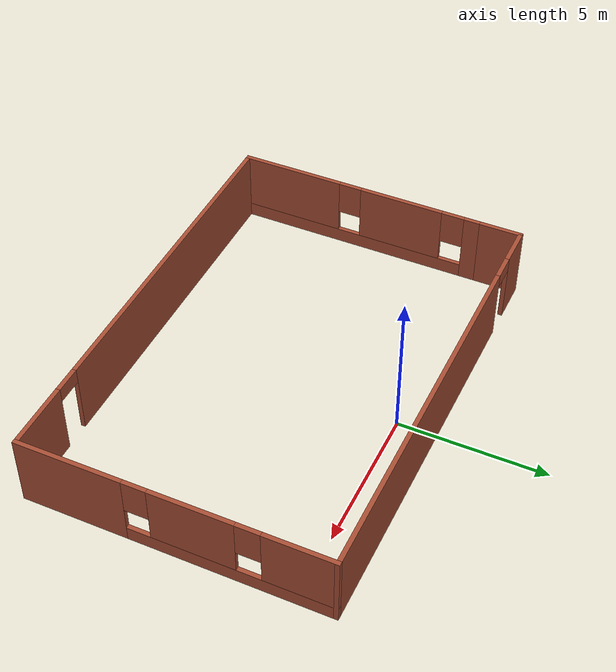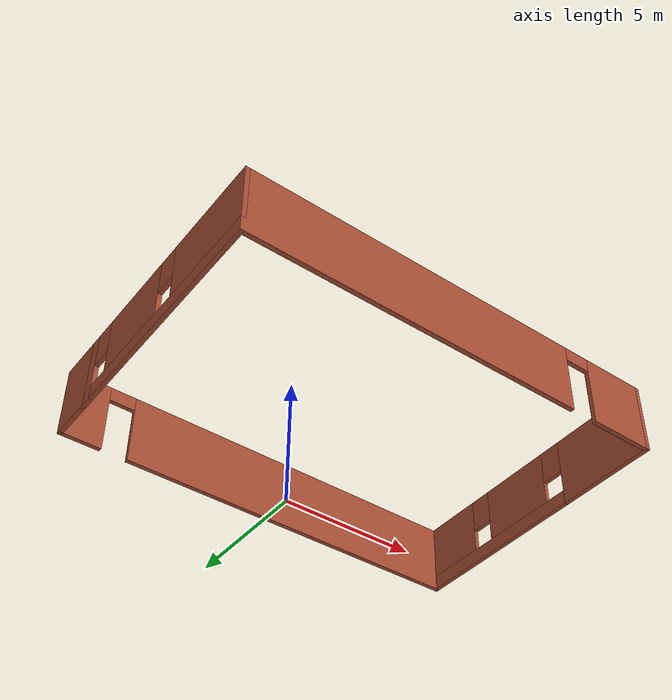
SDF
<?xml version='1.0'?>
<sdf version='1.7'>
  <model name='new_building'>
    <pose>-0.026993 -3.79741 0 0 -0 0</pose>
    <link name='Wall_3'>
      <pose>-7.425 -0.75 0 0 -0 -1.5708</pose>
      <visual name='Wall_3_Visual_0'>
        <pose>-4.0986 0 1.25 0 -0 0</pose>
        <geometry>
          <box>
            <size>0.552806 0.15 2.5</size>
          </box>
        </geometry>
        <material>
          <script>
            <uri>file://media/materials/scripts/gazebo.material</uri>
            <name>Gazebo/Bricks</name>
          </script>
          <ambient>1 1 1 1</ambient>
        </material>
        <meta>
          <layer>0</layer>
        </meta>
      </visual>
      <collision name='Wall_3_Collision_0'>
        <geometry>
          <box>
            <size>0.552806 0.15 2.5</size>
          </box>
        </geometry>
        <pose>-4.0986 0 1.25 0 -0 0</pose>
      </collision>
      <visual name='Wall_3_Visual_1'>
        <pose>0.276403 0 0.25 0 -0 0</pose>
        <geometry>
          <box>
            <size>8.19719 0.15 0.5</size>
          </box>
        </geometry>
        <material>
          <script>
            <uri>file://media/materials/scripts/gazebo.material</uri>
            <name>Gazebo/Bricks</name>
          </script>
          <ambient>1 1 1 1</ambient>
        </material>
        <meta>
          <layer>0</layer>
        </meta>
      </visual>
      <collision name='Wall_3_Collision_1'>
        <geometry>
          <box>
            <size>8.19719 0.15 0.5</size>
          </box>
        </geometry>
        <pose>0.276403 0 0.25 0 -0 0</pose>
      </collision>
      <visual name='Wall_3_Visual_2'>
        <pose>-1.53358 0 1.5 0 -0 0</pose>
        <geometry>
          <box>
            <size>2.97723 0.15 2</size>
          </box>
        </geometry>
        <material>
          <script>
            <uri>file://media/materials/scripts/gazebo.material</uri>
            <name>Gazebo/Bricks</name>
          </script>
          <ambient>1 1 1 1</ambient>
        </material>
        <meta>
          <layer>0</layer>
        </meta>
      </visual>
      <collision name='Wall_3_Collision_2'>
        <geometry>
          <box>
            <size>2.97723 0.15 2</size>
          </box>
        </geometry>
        <pose>-1.53358 0 1.5 0 -0 0</pose>
      </collision>
      <visual name='Wall_3_Visual_3'>
        <pose>2.56502 0 1.5 0 -0 0</pose>
        <geometry>
          <box>
            <size>3.61997 0.15 2</size>
          </box>
        </geometry>
        <material>
          <script>
            <uri>file://media/materials/scripts/gazebo.material</uri>
            <name>Gazebo/Bricks</name>
          </script>
          <ambient>1 1 1 1</ambient>
        </material>
        <meta>
          <layer>0</layer>
        </meta>
      </visual>
      <collision name='Wall_3_Collision_3'>
        <geometry>
          <box>
            <size>3.61997 0.15 2</size>
          </box>
        </geometry>
        <pose>2.56502 0 1.5 0 -0 0</pose>
      </collision>
      <visual name='Wall_3_Visual_4'>
        <pose>-3.42219 0 1.9 0 -0 0</pose>
        <geometry>
          <box>
            <size>0.8 0.15 1.2</size>
          </box>
        </geometry>
        <material>
          <script>
            <uri>file://media/materials/scripts/gazebo.material</uri>
            <name>Gazebo/Bricks</name>
          </script>
          <ambient>1 1 1 1</ambient>
        </material>
        <meta>
          <layer>0</layer>
        </meta>
      </visual>
      <collision name='Wall_3_Collision_4'>
        <geometry>
          <box>
            <size>0.8 0.15 1.2</size>
          </box>
        </geometry>
        <pose>-3.42219 0 1.9 0 -0 0</pose>
      </collision>
      <visual name='Wall_3_Visual_5'>
        <pose>0.355035 0 1.9 0 -0 0</pose>
        <geometry>
          <box>
            <size>0.8 0.15 1.2</size>
          </box>
        </geometry>
        <material>
          <script>
            <uri>file://media/materials/scripts/gazebo.material</uri>
            <name>Gazebo/Bricks</name>
          </script>
          <ambient>1 1 1 1</ambient>
        </material>
        <meta>
          <layer>0</layer>
        </meta>
      </visual>
      <collision name='Wall_3_Collision_5'>
        <geometry>
          <box>
            <size>0.8 0.15 1.2</size>
          </box>
        </geometry>
        <pose>0.355035 0 1.9 0 -0 0</pose>
      </collision>
    </link>
    <link name='Wall_4'>
      <pose>0 -5.05 0 0 -0 0</pose>
      <visual name='Wall_4_Visual_0'>
        <pose>-1.62265 0 1.25 0 -0 0</pose>
        <geometry>
          <box>
            <size>11.7547 0.15 2.5</size>
          </box>
        </geometry>
        <material>
          <script>
            <uri>file://media/materials/scripts/gazebo.material</uri>
            <name>Gazebo/Bricks</name>
          </script>
          <ambient>1 1 1 1</ambient>
        </material>
        <meta>
          <layer>0</layer>
        </meta>
      </visual>
      <collision name='Wall_4_Collision_0'>
        <geometry>
          <box>
            <size>11.7547 0.15 2.5</size>
          </box>
        </geometry>
        <pose>-1.62265 0 1.25 0 -0 0</pose>
      </collision>
      <visual name='Wall_4_Visual_1'>
        <pose>6.32735 0 1.25 0 -0 0</pose>
        <geometry>
          <box>
            <size>2.34531 0.15 2.5</size>
          </box>
        </geometry>
        <material>
          <script>
            <uri>file://media/materials/scripts/gazebo.material</uri>
            <name>Gazebo/Bricks</name>
          </script>
          <ambient>1 1 1 1</ambient>
        </material>
        <meta>
          <layer>0</layer>
        </meta>
      </visual>
      <collision name='Wall_4_Collision_1'>
        <geometry>
          <box>
            <size>2.34531 0.15 2.5</size>
          </box>
        </geometry>
        <pose>6.32735 0 1.25 0 -0 0</pose>
      </collision>
      <visual name='Wall_4_Visual_2'>
        <pose>4.70469 0 2.25 0 -0 0</pose>
        <geometry>
          <box>
            <size>0.9 0.15 0.5</size>
          </box>
        </geometry>
        <material>
          <script>
            <uri>file://media/materials/scripts/gazebo.material</uri>
            <name>Gazebo/Bricks</name>
          </script>
          <ambient>1 1 1 1</ambient>
        </material>
        <meta>
          <layer>0</layer>
        </meta>
      </visual>
      <collision name='Wall_4_Collision_2'>
        <geometry>
          <box>
            <size>0.9 0.15 0.5</size>
          </box>
        </geometry>
        <pose>4.70469 0 2.25 0 -0 0</pose>
      </collision>
    </link>
    <link name='Wall_5'>
      <pose>7.425 0 0 0 -0 1.5708</pose>
      <visual name='Wall_5_Visual_0'>
        <pose>-3.34162 0 1.25 0 -0 0</pose>
        <geometry>
          <box>
            <size>3.56677 0.15 2.5</size>
          </box>
        </geometry>
        <material>
          <script>
            <uri>file://media/materials/scripts/gazebo.material</uri>
            <name>Gazebo/Bricks</name>
          </script>
          <ambient>1 1 1 1</ambient>
        </material>
        <meta>
          <layer>0</layer>
        </meta>
      </visual>
      <collision name='Wall_5_Collision_0'>
        <geometry>
          <box>
            <size>3.56677 0.15 2.5</size>
          </box>
        </geometry>
        <pose>-3.34162 0 1.25 0 -0 0</pose>
      </collision>
      <visual name='Wall_5_Visual_1'>
        <pose>1.78338 0 0.25 0 -0 0</pose>
        <geometry>
          <box>
            <size>6.68323 0.15 0.5</size>
          </box>
        </geometry>
        <material>
          <script>
            <uri>file://media/materials/scripts/gazebo.material</uri>
            <name>Gazebo/Bricks</name>
          </script>
          <ambient>1 1 1 1</ambient>
        </material>
        <meta>
          <layer>0</layer>
        </meta>
      </visual>
      <collision name='Wall_5_Collision_1'>
        <geometry>
          <box>
            <size>6.68323 0.15 0.5</size>
          </box>
        </geometry>
        <pose>1.78338 0 0.25 0 -0 0</pose>
      </collision>
      <visual name='Wall_5_Visual_2'>
        <pose>0.610678 0 1.5 0 -0 0</pose>
        <geometry>
          <box>
            <size>2.73783 0.15 2</size>
          </box>
        </geometry>
        <material>
          <script>
            <uri>file://media/materials/scripts/gazebo.material</uri>
            <name>Gazebo/Bricks</name>
          </script>
          <ambient>1 1 1 1</ambient>
        </material>
        <meta>
          <layer>0</layer>
        </meta>
      </visual>
      <collision name='Wall_5_Collision_2'>
        <geometry>
          <box>
            <size>2.73783 0.15 2</size>
          </box>
        </geometry>
        <pose>0.610678 0 1.5 0 -0 0</pose>
      </collision>
      <visual name='Wall_5_Visual_3'>
        <pose>3.9523 0 1.5 0 -0 0</pose>
        <geometry>
          <box>
            <size>2.34541 0.15 2</size>
          </box>
        </geometry>
        <material>
          <script>
            <uri>file://media/materials/scripts/gazebo.material</uri>
            <name>Gazebo/Bricks</name>
          </script>
          <ambient>1 1 1 1</ambient>
        </material>
        <meta>
          <layer>0</layer>
        </meta>
      </visual>
      <collision name='Wall_5_Collision_3'>
        <geometry>
          <box>
            <size>2.34541 0.15 2</size>
          </box>
        </geometry>
        <pose>3.9523 0 1.5 0 -0 0</pose>
      </collision>
      <visual name='Wall_5_Visual_4'>
        <pose>-1.15823 0 1.9 0 -0 0</pose>
        <geometry>
          <box>
            <size>0.8 0.15 1.2</size>
          </box>
        </geometry>
        <material>
          <script>
            <uri>file://media/materials/scripts/gazebo.material</uri>
            <name>Gazebo/Bricks</name>
          </script>
          <ambient>1 1 1 1</ambient>
        </material>
        <meta>
          <layer>0</layer>
        </meta>
      </visual>
      <collision name='Wall_5_Collision_4'>
        <geometry>
          <box>
            <size>0.8 0.15 1.2</size>
          </box>
        </geometry>
        <pose>-1.15823 0 1.9 0 -0 0</pose>
      </collision>
      <visual name='Wall_5_Visual_5'>
        <pose>2.37959 0 1.9 0 -0 0</pose>
        <geometry>
          <box>
            <size>0.8 0.15 1.2</size>
          </box>
        </geometry>
        <material>
          <script>
            <uri>file://media/materials/scripts/gazebo.material</uri>
            <name>Gazebo/Bricks</name>
          </script>
          <ambient>1 1 1 1</ambient>
        </material>
        <meta>
          <layer>0</layer>
        </meta>
      </visual>
      <collision name='Wall_5_Collision_5'>
        <geometry>
          <box>
            <size>0.8 0.15 1.2</size>
          </box>
        </geometry>
        <pose>2.37959 0 1.9 0 -0 0</pose>
      </collision>
    </link>
    <link name='Wall_6'>
      <pose>0 5.05 0 0 -0 3.14159</pose>
      <visual name='Wall_6_Visual_0'>
        <pose>-1.16691 0 1.25 0 -0 0</pose>
        <geometry>
          <box>
            <size>12.6662 0.15 2.5</size>
          </box>
        </geometry>
        <material>
          <script>
            <uri>file://media/materials/scripts/gazebo.material</uri>
            <name>Gazebo/Bricks</name>
          </script>
          <ambient>1 1 1 1</ambient>
        </material>
        <meta>
          <layer>0</layer>
        </meta>
      </visual>
      <collision name='Wall_6_Collision_0'>
        <geometry>
          <box>
            <size>12.6662 0.15 2.5</size>
          </box>
        </geometry>
        <pose>-1.16691 0 1.25 0 -0 0</pose>
      </collision>
      <visual name='Wall_6_Visual_1'>
        <pose>6.78309 0 1.25 0 -0 0</pose>
        <geometry>
          <box>
            <size>1.43381 0.15 2.5</size>
          </box>
        </geometry>
        <material>
          <script>
            <uri>file://media/materials/scripts/gazebo.material</uri>
            <name>Gazebo/Bricks</name>
          </script>
          <ambient>1 1 1 1</ambient>
        </material>
        <meta>
          <layer>0</layer>
        </meta>
      </visual>
      <collision name='Wall_6_Collision_1'>
        <geometry>
          <box>
            <size>1.43381 0.15 2.5</size>
          </box>
        </geometry>
        <pose>6.78309 0 1.25 0 -0 0</pose>
      </collision>
      <visual name='Wall_6_Visual_2'>
        <pose>5.61619 0 2.25 0 -0 0</pose>
        <geometry>
          <box>
            <size>0.9 0.15 0.5</size>
          </box>
        </geometry>
        <material>
          <script>
            <uri>file://media/materials/scripts/gazebo.material</uri>
            <name>Gazebo/Bricks</name>
          </script>
          <ambient>1 1 1 1</ambient>
        </material>
        <meta>
          <layer>0</layer>
        </meta>
      </visual>
      <collision name='Wall_6_Collision_2'>
        <geometry>
          <box>
            <size>0.9 0.15 0.5</size>
          </box>
        </geometry>
        <pose>5.61619 0 2.25 0 -0 0</pose>
      </collision>
    </link>
    <link name='Wall_7'>
      <collision name='Wall_7_Collision'>
        <geometry>
          <box>
            <size>1.65 0.15 2.5</size>
          </box>
        </geometry>
        <pose>0 0 1.25 0 -0 0</pose>
      </collision>
      <visual name='Wall_7_Visual'>
        <pose>0 0 1.25 0 -0 0</pose>
        <geometry>
          <box>
            <size>1.65 0.15 2.5</size>
          </box>
        </geometry>
        <material>
          <script>
            <uri>file://media/materials/scripts/gazebo.material</uri>
            <name>Gazebo/Bricks</name>
          </script>
          <ambient>1 1 1 1</ambient>
        </material>
        <meta>
          <layer>0</layer>
        </meta>
      </visual>
      <pose>-7.425 4.3 0 0 -0 -1.5708</pose>
    </link>
    <static>1</static>
  </model>
</sdf>
